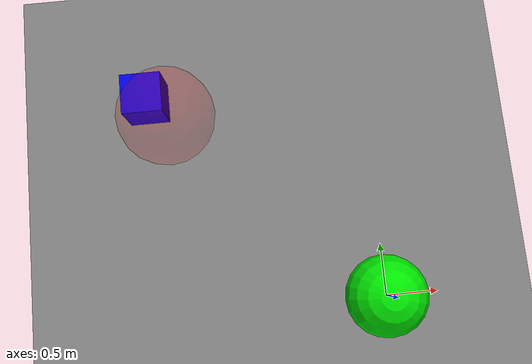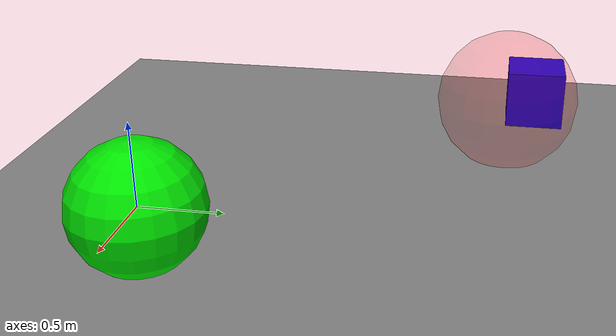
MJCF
<mujoco>
    <option gravity="0 0 0" timestep="0.2"/>
    <worldbody>
        <geom name='floor' pos='0 0 -0.4' size='5 5 .125' type='plane' condim='3'/>
        <body name="ball" pos="0 0 0">
            <light diffuse="1.5 1.5 1.5" pos="0 0 2" dir="0 0 -1" mode="track"/>
            <joint axis="1 0 0" damping="0" name="slide0" pos="0 0 0" type="slide"/>
            <joint axis="0 1 0" damping="0" name="slide1" pos="0 0 0" type="slide"/>
            <joint axis="0 0 1" damping="0" name="slide2" pos="0 0 0" type="slide"/>
            <geom type="sphere" size="0.4" mass="1" rgba="0 .9 0 1"/>
        </body>
		<body mocap="true" name="mocap1" pos="-2 2 0">
            <light name="light1" pos="0 0 2" mode="fixed" castshadow="false"/>
			<geom conaffinity="0" contype="0" pos="0 0 0" rgba=".9 0 0 0.2" size="0.5" type="sphere" />
		</body>
        <body name="box" pos="-2.2 2.2 0">
            <geom mass="1000000000" size="0.2 0.2 0.2" type="box" rgba="0 0 0.9 1"/>
            <joint axis="1 0 0" name="box:slidex" type="slide"/>
            <joint axis="0 1 0" name="box:slidey" type="slide"/>
        </body>
    </worldbody>
    <actuator>
        <motor gear="1" joint="slide0"/>
        <motor gear="1" joint="slide1"/>
        <motor gear="1" joint="slide2"/>
    </actuator>
</mujoco>
